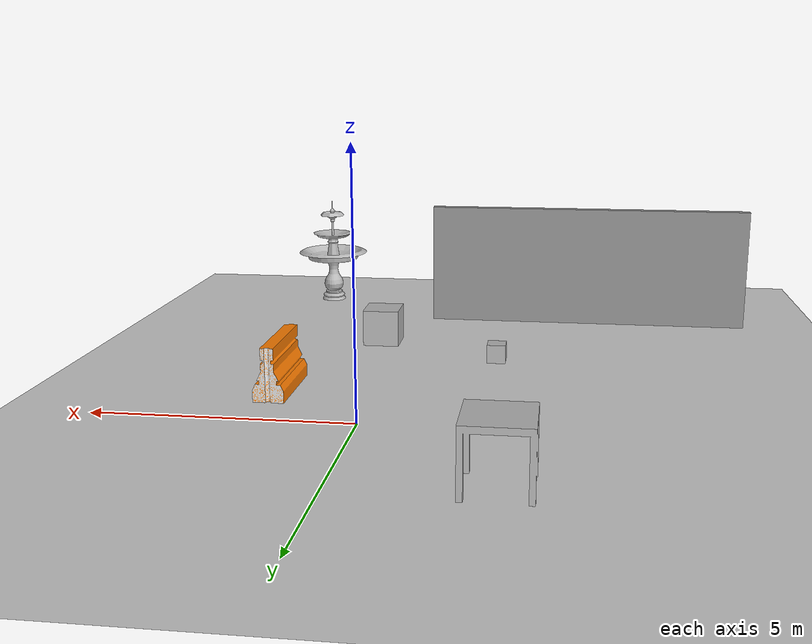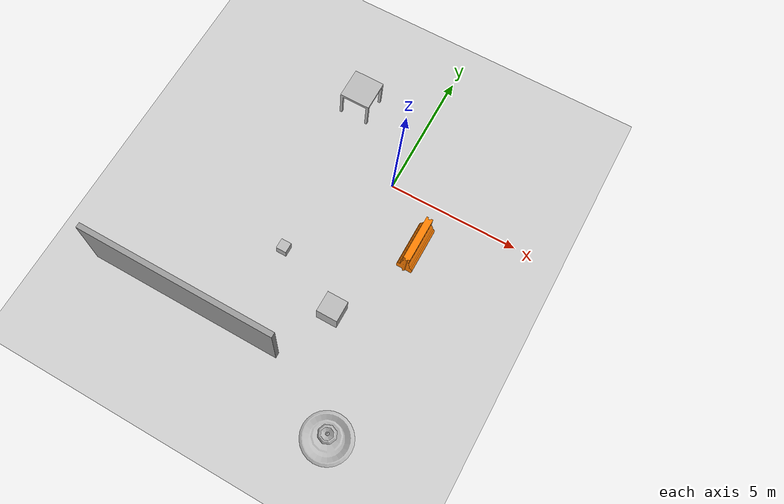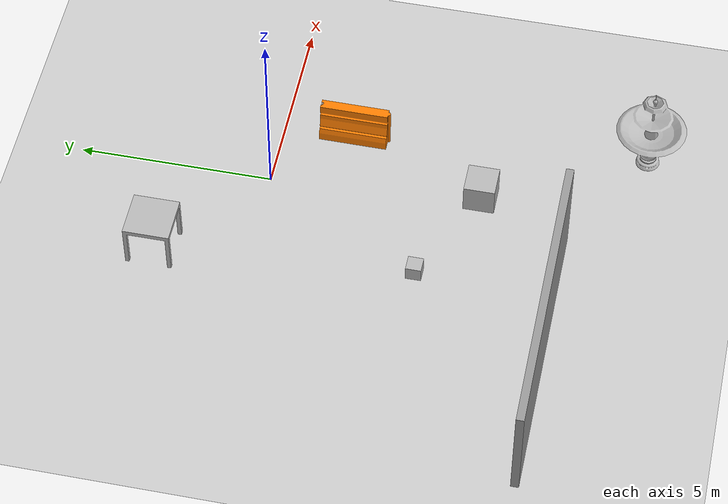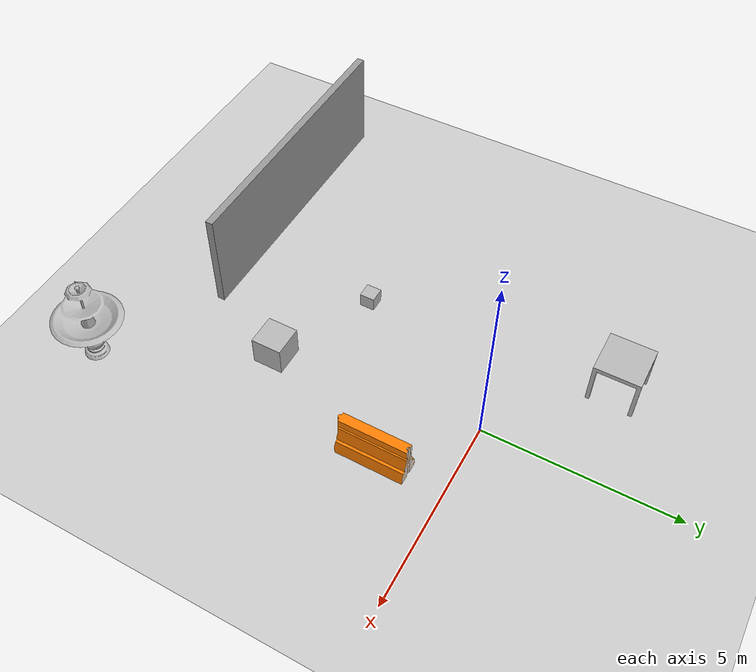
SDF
<sdf version="1.6">
 <world name="default">
  <light name="sun" type="directional">
   <pose>0 0 15 0 -0 0</pose>
   <diffuse>1 1 1 1</diffuse>
   <specular>0.1 0.1 0.1 1</specular>
   <attenuation>
    <range>1000</range>
    <constant>0.9</constant>
    <linear>0.01</linear>
    <quadratic>0.001</quadratic>
   </attenuation>
   <direction>-0.5 0.5 -1</direction>
  </light>
  <model name="ground_plane">
   <static>1</static>
   <link name="link">
    <collision name="collision">
     <geometry><plane><normal>0 0 1</normal><size>100 100</size></plane></geometry>
     <surface><friction><ode><mu>100</mu><mu2>50</mu2></ode></friction></surface>
    </collision>
    <visual name="visual">
     <transparency>1</transparency>
     <cast_shadows>0</cast_shadows>
     <geometry><plane><normal>0 0 1</normal><size>100 100</size></plane></geometry>
     <material>
      <script><uri>file://media/materials/scripts/gazebo.material</uri><name>Gazebo/Grey</name></script>
     </material>
    </visual>
   </link>
  </model>
  <gravity>0 0 -9.8</gravity>
  <magnetic_field>6e-06 2.3e-05 -4.2e-05</magnetic_field>
  <atmosphere type="adiabatic"/>
  <physics name="default_physics" default="0" type="ode">
   <max_step_size>0.001</max_step_size>
   <real_time_factor>1</real_time_factor>
   <real_time_update_rate>1000</real_time_update_rate>
  </physics>
  <scene><ambient>0.4 0.4 0.4 1</ambient><background>0.7 0.7 0.7 1</background><shadows>1</shadows></scene>
  <spherical_coordinates>
   <surface_model>EARTH_WGS84</surface_model>
   <latitude_deg>0</latitude_deg>
   <longitude_deg>0</longitude_deg>
   <elevation>0</elevation>
   <heading_deg>0</heading_deg>
  </spherical_coordinates>
  <model name="cardboard_box">
   <pose>-2.2211 -4.18154 0.149 0 -0 0</pose>
   <link name="link">
    <inertial>
     <mass>2</mass>
     <inertia>
      <ixx>0.0416667</ixx>
      <ixy>0</ixy>
      <ixz>0</ixz>
      <iyy>0.0566667</iyy>
      <iyz>0</iyz>
      <izz>0.0683333</izz>
     </inertia>
    </inertial>
    <collision name="collision">
     <geometry><box><size>0.5 0.4 0.3</size></box></geometry>
     <surface>
      <friction><ode><mu>1</mu><mu2>1</mu2></ode></friction>
      <contact><ode><kp>1e+07</kp><kd>1</kd><min_depth>0.001</min_depth><max_vel>0.1</max_vel></ode></contact>
     </surface>
    </collision>
    <visual name="visual">
     <pose>0 0 -0.15 0 -0 0</pose>
     <geometry>
      <mesh><uri>model://cardboard_box/meshes/cardboard_box.dae</uri><scale>1 1 1</scale></mesh>
     </geometry>
    </visual>
   </link>
  </model>
  <model name="nist_elevated_floor_120">
   <static>1</static>
   <link name="nist_elevated_floor_120">
    <collision name="collision">
     <geometry>
      <mesh><uri>model://nist_elevated_floor_120/meshes/nist_elevated_floor_120.dae</uri><scale>1 1 1</scale></mesh>
     </geometry>
    </collision>
    <visual name="visual">
     <geometry>
      <mesh><uri>model://nist_elevated_floor_120/meshes/nist_elevated_floor_120.dae</uri><scale>1 1 1</scale></mesh>
     </geometry>
    </visual>
   </link>
   <pose>-2.6875 2.40714 0 0 -0 0</pose>
  </model>
  <model name="grey_wall">
   <static>1</static>
   <link name="link">
    <pose>0 0 1.4 0 -0 0</pose>
    <collision name="collision"><geometry><box><size>7.5 0.2 2.8</size></box></geometry></collision>
    <visual name="visual">
     <cast_shadows>0</cast_shadows>
     <geometry><box><size>7.5 0.2 2.8</size></box></geometry>
     <material>
      <script>
       <uri>model://grey_wall/materials/scripts</uri>
       <uri>model://grey_wall/materials/textures</uri>
       <name>vrc/grey_wall</name>
      </script>
     </material>
    </visual>
   </link>
   <pose>-4.17289 -7.66762 0 0 -0 0</pose>
  </model>
  <model name="fountain">
   <static>1</static>
   <link name="link">
    <collision name="collision">
     <geometry><mesh><uri>model://fountain/meshes/fountain.dae</uri><scale>1 1 1</scale></mesh></geometry>
    </collision>
    <visual name="visual">
     <geometry><mesh><uri>model://fountain/meshes/fountain.dae</uri><scale>1 1 1</scale></mesh></geometry>
    </visual>
   </link>
   <pose>2.51863 -9.40932 0 0 -0 0</pose>
  </model>
  <model name="drc_practice_organge_jersey_barrier">
   <static>1</static>
   <link name="link">
    <visual name="visual">
     <geometry>
      <mesh>
       <uri>model://drc_practice_orange_jersey_barrier/meshes/jersey_barrier.dae</uri>
       <scale>1 1 1</scale>
      </mesh>
     </geometry>
    </visual>
    <collision name="collision">
     <geometry>
      <mesh>
       <uri>model://drc_practice_orange_jersey_barrier/meshes/jersey_barrier.dae</uri>
       <scale>1 1 1</scale>
      </mesh>
     </geometry>
    </collision>
   </link>
   <pose>1.88839 -1.81492 0 0 -0 0</pose>
  </model>
  <model name="number1">
   <pose>0.455026 -5.39578 0.4 0 -0 0</pose>
   <static>1</static>
   <link name="link">
    <visual name="visual">
     <geometry><mesh><uri>model://number1/meshes/number.dae</uri><scale>1 1 1</scale></mesh></geometry>
     <material>
      <script>
       <uri>model://number1/materials/scripts</uri>
       <uri>model://number1/materials/textures</uri>
       <name>Number/One</name>
      </script>
     </material>
    </visual>
   </link>
  </model>
 </world>
</sdf>
